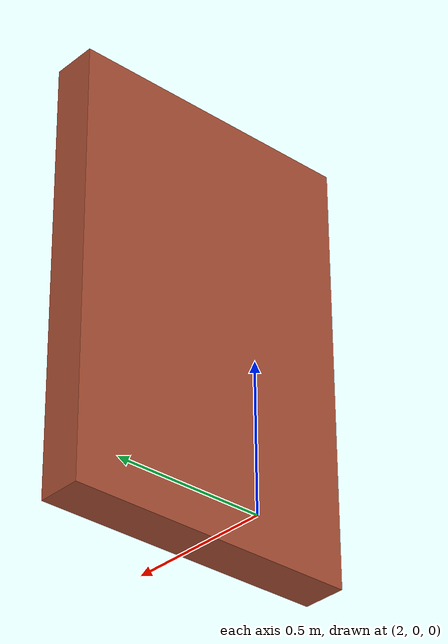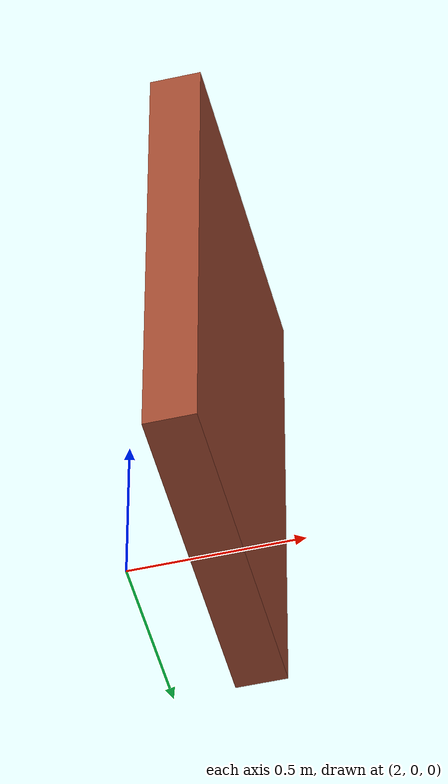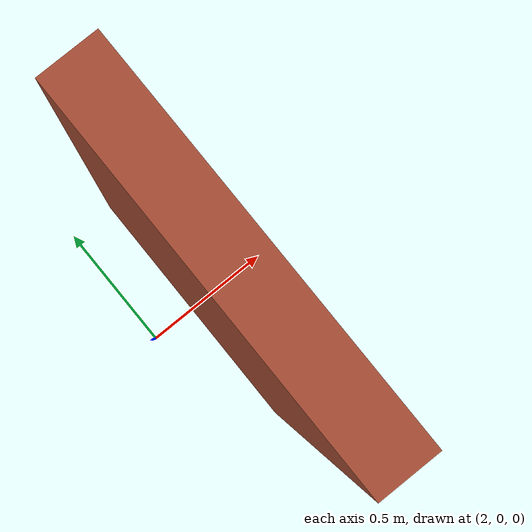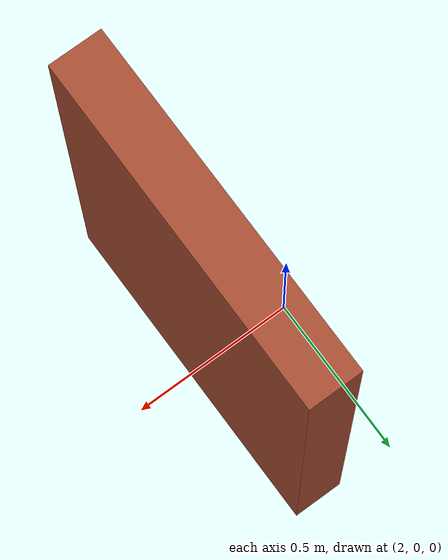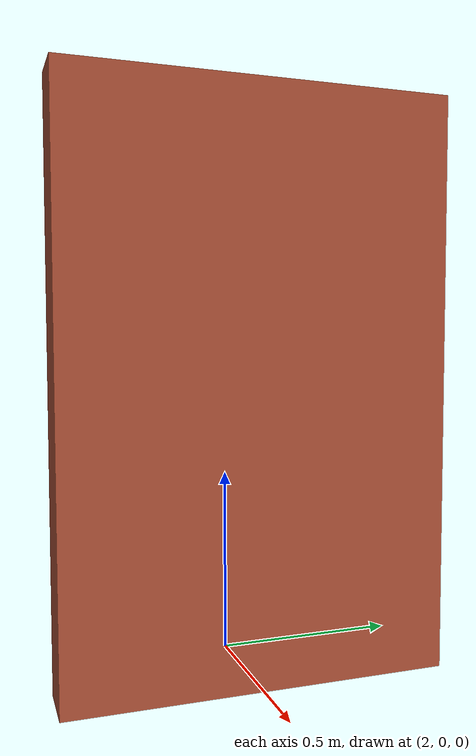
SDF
<?xml version='1.0'?>
<sdf version='1.7'>
  <model name='obstacle_wall'>
    <pose>1.1635 0 0 0 -0 0</pose>
    <link name='Wall_26'>
      <collision name='Wall_26_Collision'>
        <geometry>
          <box>
            <size>1 0.15 1.5</size>
          </box>
        </geometry>
        <pose>0 0 0.75 0 -0 0</pose>
      </collision>
      <visual name='Wall_26_Visual'>
        <pose>0 0 0.75 0 -0 0</pose>
        <geometry>
          <box>
            <size>1 0.15 1.5</size>
          </box>
        </geometry>
        <material>
          <script>
            <uri>file://media/materials/scripts/gazebo.material</uri>
            <name>Gazebo/Bricks</name>
          </script>
          <ambient>1 1 1 1</ambient>
        </material>
        <meta>
          <layer>0</layer>
        </meta>
      </visual>
      <pose>1.0885 0 0 0 -0 -1.5708</pose>
    </link>
    <static>1</static>
  </model>
</sdf>
